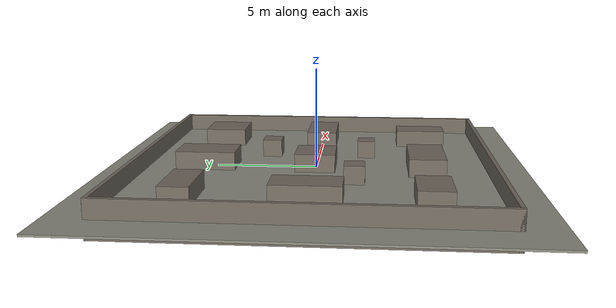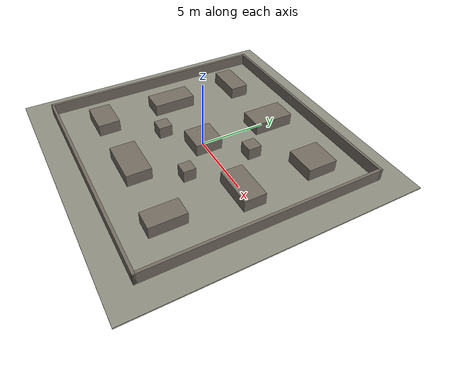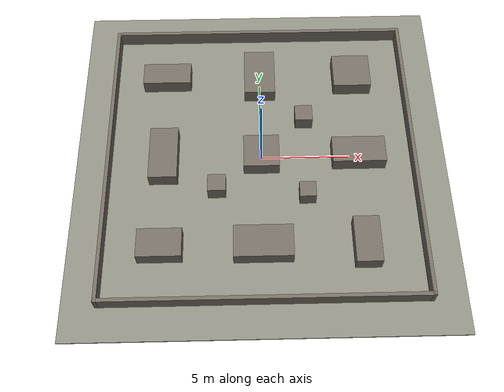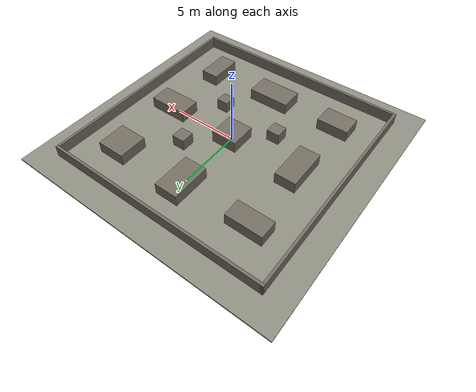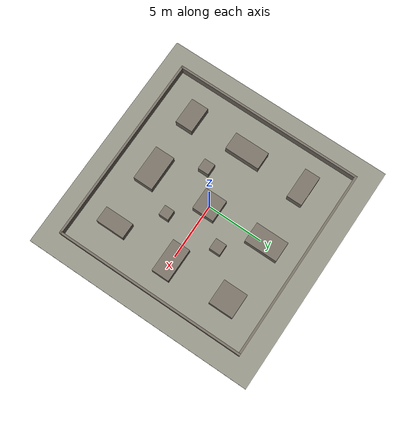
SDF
<?xml version="1.0" ?>
<sdf version="1.7">
  <world name="nav_obstacle">
    <physics type="ode">
      <max_step_size>0.01</max_step_size>
    </physics>

    <light name="sun" type="directional">
      <cast_shadows>true</cast_shadows>
      <pose>0 0 10 0 0 0</pose>
      <diffuse>0.8 0.8 0.8 1</diffuse>
      <specular>0.3 0.3 0.3 1</specular>
      <attenuation>
        <range>1000</range>
        <constant>0.9</constant>
        <linear>0.01</linear>
        <quadratic>0.001</quadratic>
      </attenuation>
      <direction>-0.5 0.3 -1.0</direction>
    </light>

    <model name="ground_plane">
      <static>true</static>
      <pose>0 0 -0.05 0 0 0</pose>
      <link name="link">
        <collision name="collision">
          <geometry>
            <box><size>21.0 21.0 0.1</size></box>
          </geometry>
          <surface>
            <friction>
              <ode><mu>100</mu><mu2>50</mu2></ode>
            </friction>
          </surface>
        </collision>
        <visual name="visual">
          <geometry>
            <box><size>21.0 21.0 0.1</size></box>
          </geometry>
          <material>
            <ambient>0.55 0.55 0.5 1</ambient>
            <diffuse>0.55 0.55 0.5 1</diffuse>
          </material>
        </visual>
      </link>
    </model>

    <model name="obstacle_00">
      <static>true</static>
      <pose>0.000 -8.600 0 0 0 0</pose>
      <link name="link">
        <collision name="collision">
          <geometry>
            <box><size>17.400 0.200 1.800</size></box>
          </geometry>
        </collision>
        <visual name="visual">
          <geometry>
            <box><size>17.400 0.200 1.800</size></box>
          </geometry>
          <material>
            <ambient>0.45 0.42 0.38 1</ambient>
            <diffuse>0.45 0.42 0.38 1</diffuse>
            <specular>0.1 0.1 0.1 1</specular>
          </material>
        </visual>
      </link>
    </model>

    <model name="obstacle_01">
      <static>true</static>
      <pose>0.000 8.600 0 0 0 0</pose>
      <link name="link">
        <collision name="collision">
          <geometry>
            <box><size>17.400 0.200 1.800</size></box>
          </geometry>
        </collision>
        <visual name="visual">
          <geometry>
            <box><size>17.400 0.200 1.800</size></box>
          </geometry>
          <material>
            <ambient>0.45 0.42 0.38 1</ambient>
            <diffuse>0.45 0.42 0.38 1</diffuse>
            <specular>0.1 0.1 0.1 1</specular>
          </material>
        </visual>
      </link>
    </model>

    <model name="obstacle_02">
      <static>true</static>
      <pose>-8.600 0.000 0 0 0 0</pose>
      <link name="link">
        <collision name="collision">
          <geometry>
            <box><size>0.200 17.400 1.800</size></box>
          </geometry>
        </collision>
        <visual name="visual">
          <geometry>
            <box><size>0.200 17.400 1.800</size></box>
          </geometry>
          <material>
            <ambient>0.45 0.42 0.38 1</ambient>
            <diffuse>0.45 0.42 0.38 1</diffuse>
            <specular>0.1 0.1 0.1 1</specular>
          </material>
        </visual>
      </link>
    </model>

    <model name="obstacle_03">
      <static>true</static>
      <pose>8.600 0.000 0 0 0 0</pose>
      <link name="link">
        <collision name="collision">
          <geometry>
            <box><size>0.200 17.400 1.800</size></box>
          </geometry>
        </collision>
        <visual name="visual">
          <geometry>
            <box><size>0.200 17.400 1.800</size></box>
          </geometry>
          <material>
            <ambient>0.45 0.42 0.38 1</ambient>
            <diffuse>0.45 0.42 0.38 1</diffuse>
            <specular>0.1 0.1 0.1 1</specular>
          </material>
        </visual>
      </link>
    </model>

    <model name="obstacle_04">
      <static>true</static>
      <pose>-5.500 -5.500 0 0 0 0</pose>
      <link name="link">
        <collision name="collision">
          <geometry>
            <box><size>2.400 1.600 1.800</size></box>
          </geometry>
        </collision>
        <visual name="visual">
          <geometry>
            <box><size>2.400 1.600 1.800</size></box>
          </geometry>
          <material>
            <ambient>0.45 0.42 0.38 1</ambient>
            <diffuse>0.45 0.42 0.38 1</diffuse>
            <specular>0.1 0.1 0.1 1</specular>
          </material>
        </visual>
      </link>
    </model>

    <model name="obstacle_05">
      <static>true</static>
      <pose>-5.500 0.000 0 0 0 0</pose>
      <link name="link">
        <collision name="collision">
          <geometry>
            <box><size>1.600 3.200 1.800</size></box>
          </geometry>
        </collision>
        <visual name="visual">
          <geometry>
            <box><size>1.600 3.200 1.800</size></box>
          </geometry>
          <material>
            <ambient>0.45 0.42 0.38 1</ambient>
            <diffuse>0.45 0.42 0.38 1</diffuse>
            <specular>0.1 0.1 0.1 1</specular>
          </material>
        </visual>
      </link>
    </model>

    <model name="obstacle_06">
      <static>true</static>
      <pose>-5.500 5.500 0 0 0 0</pose>
      <link name="link">
        <collision name="collision">
          <geometry>
            <box><size>2.800 1.400 1.800</size></box>
          </geometry>
        </collision>
        <visual name="visual">
          <geometry>
            <box><size>2.800 1.400 1.800</size></box>
          </geometry>
          <material>
            <ambient>0.45 0.42 0.38 1</ambient>
            <diffuse>0.45 0.42 0.38 1</diffuse>
            <specular>0.1 0.1 0.1 1</specular>
          </material>
        </visual>
      </link>
    </model>

    <model name="obstacle_07">
      <static>true</static>
      <pose>0.000 -5.500 0 0 0 0</pose>
      <link name="link">
        <collision name="collision">
          <geometry>
            <box><size>3.200 1.800 1.800</size></box>
          </geometry>
        </collision>
        <visual name="visual">
          <geometry>
            <box><size>3.200 1.800 1.800</size></box>
          </geometry>
          <material>
            <ambient>0.45 0.42 0.38 1</ambient>
            <diffuse>0.45 0.42 0.38 1</diffuse>
            <specular>0.1 0.1 0.1 1</specular>
          </material>
        </visual>
      </link>
    </model>

    <model name="obstacle_08">
      <static>true</static>
      <pose>0.000 0.000 0 0 0 0</pose>
      <link name="link">
        <collision name="collision">
          <geometry>
            <box><size>2.000 2.000 1.800</size></box>
          </geometry>
        </collision>
        <visual name="visual">
          <geometry>
            <box><size>2.000 2.000 1.800</size></box>
          </geometry>
          <material>
            <ambient>0.45 0.42 0.38 1</ambient>
            <diffuse>0.45 0.42 0.38 1</diffuse>
            <specular>0.1 0.1 0.1 1</specular>
          </material>
        </visual>
      </link>
    </model>

    <model name="obstacle_09">
      <static>true</static>
      <pose>0.000 5.500 0 0 0 0</pose>
      <link name="link">
        <collision name="collision">
          <geometry>
            <box><size>1.800 3.000 1.800</size></box>
          </geometry>
        </collision>
        <visual name="visual">
          <geometry>
            <box><size>1.800 3.000 1.800</size></box>
          </geometry>
          <material>
            <ambient>0.45 0.42 0.38 1</ambient>
            <diffuse>0.45 0.42 0.38 1</diffuse>
            <specular>0.1 0.1 0.1 1</specular>
          </material>
        </visual>
      </link>
    </model>

    <model name="obstacle_10">
      <static>true</static>
      <pose>5.500 -5.500 0 0 0 0</pose>
      <link name="link">
        <collision name="collision">
          <geometry>
            <box><size>1.400 2.600 1.800</size></box>
          </geometry>
        </collision>
        <visual name="visual">
          <geometry>
            <box><size>1.400 2.600 1.800</size></box>
          </geometry>
          <material>
            <ambient>0.45 0.42 0.38 1</ambient>
            <diffuse>0.45 0.42 0.38 1</diffuse>
            <specular>0.1 0.1 0.1 1</specular>
          </material>
        </visual>
      </link>
    </model>

    <model name="obstacle_11">
      <static>true</static>
      <pose>5.500 0.000 0 0 0 0</pose>
      <link name="link">
        <collision name="collision">
          <geometry>
            <box><size>3.000 1.600 1.800</size></box>
          </geometry>
        </collision>
        <visual name="visual">
          <geometry>
            <box><size>3.000 1.600 1.800</size></box>
          </geometry>
          <material>
            <ambient>0.45 0.42 0.38 1</ambient>
            <diffuse>0.45 0.42 0.38 1</diffuse>
            <specular>0.1 0.1 0.1 1</specular>
          </material>
        </visual>
      </link>
    </model>

    <model name="obstacle_12">
      <static>true</static>
      <pose>5.500 5.500 0 0 0 0</pose>
      <link name="link">
        <collision name="collision">
          <geometry>
            <box><size>2.200 2.200 1.800</size></box>
          </geometry>
        </collision>
        <visual name="visual">
          <geometry>
            <box><size>2.200 2.200 1.800</size></box>
          </geometry>
          <material>
            <ambient>0.45 0.42 0.38 1</ambient>
            <diffuse>0.45 0.42 0.38 1</diffuse>
            <specular>0.1 0.1 0.1 1</specular>
          </material>
        </visual>
      </link>
    </model>

    <model name="obstacle_13">
      <static>true</static>
      <pose>-2.500 -2.000 0 0 0 0</pose>
      <link name="link">
        <collision name="collision">
          <geometry>
            <box><size>1.000 1.000 1.800</size></box>
          </geometry>
        </collision>
        <visual name="visual">
          <geometry>
            <box><size>1.000 1.000 1.800</size></box>
          </geometry>
          <material>
            <ambient>0.45 0.42 0.38 1</ambient>
            <diffuse>0.45 0.42 0.38 1</diffuse>
            <specular>0.1 0.1 0.1 1</specular>
          </material>
        </visual>
      </link>
    </model>

    <model name="obstacle_14">
      <static>true</static>
      <pose>2.500 2.500 0 0 0 0</pose>
      <link name="link">
        <collision name="collision">
          <geometry>
            <box><size>1.000 1.000 1.800</size></box>
          </geometry>
        </collision>
        <visual name="visual">
          <geometry>
            <box><size>1.000 1.000 1.800</size></box>
          </geometry>
          <material>
            <ambient>0.45 0.42 0.38 1</ambient>
            <diffuse>0.45 0.42 0.38 1</diffuse>
            <specular>0.1 0.1 0.1 1</specular>
          </material>
        </visual>
      </link>
    </model>

    <model name="obstacle_15">
      <static>true</static>
      <pose>2.500 -2.500 0 0 0 0</pose>
      <link name="link">
        <collision name="collision">
          <geometry>
            <box><size>0.900 0.900 1.800</size></box>
          </geometry>
        </collision>
        <visual name="visual">
          <geometry>
            <box><size>0.900 0.900 1.800</size></box>
          </geometry>
          <material>
            <ambient>0.45 0.42 0.38 1</ambient>
            <diffuse>0.45 0.42 0.38 1</diffuse>
            <specular>0.1 0.1 0.1 1</specular>
          </material>
        </visual>
      </link>
    </model>

  </world>
</sdf>
